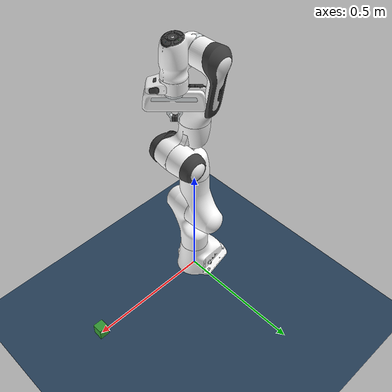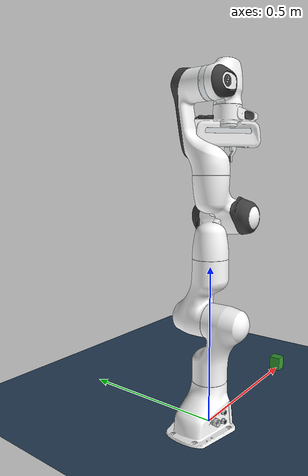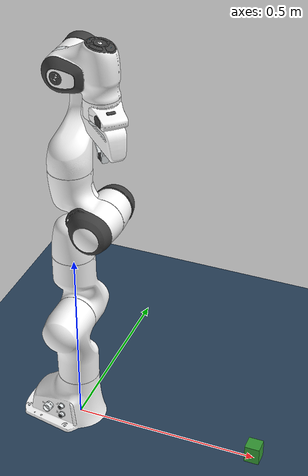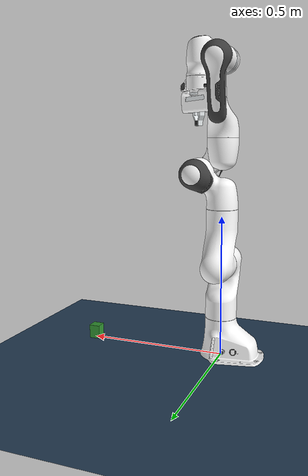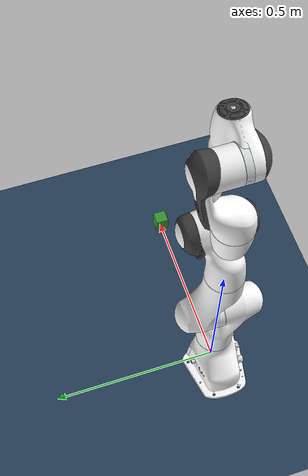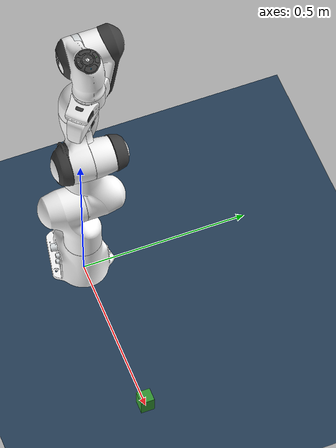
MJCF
<mujoco model="panda pregrasp scene">
  <include file="pregrasp.xml"/>

  <statistic center="0.3 0 0.4" extent="1"/>

  <visual>
    <headlight diffuse="0.6 0.6 0.6" ambient="0.3 0.3 0.3" specular="0 0 0"/>
    <rgba haze="0.15 0.25 0.35 1"/>
    <global azimuth="120" elevation="-20"/>
  </visual>

  <asset>
    <texture type="skybox" builtin="gradient" rgb1="0.3 0.5 0.7"
     rgb2="0 0 0" width="512" height="3072"/>
    <texture type="2d" name="groundplane" builtin="checker" mark="edge"
     rgb1="0.2 0.3 0.4" rgb2="0.1 0.2 0.3" markrgb="0.8 0.8 0.8"
     width="300" height="300"/>
    <material name="groundplane" texture="groundplane" texuniform="true"
     texrepeat="5 5" reflectance="0.2"/>
  </asset>

  <worldbody>
    <light pos="0 0 1.5" dir="0 0 -1" directional="true"/>
    <geom name="floor" size="0 0 0.05" type="plane" material="groundplane"/>

    <!-- The object the pregrasp pose hovers over (static, visual context) -->
    <body name="object" pos="0.5 0.0 0.025">
      <geom type="box" name="object_geom" size="0.02 0.02 0.025"
       rgba="0.2 0.6 0.2 1"/>
    </body>
  </worldbody>
</mujoco>

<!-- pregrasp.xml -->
<mujoco model="panda pregrasp">
  <compiler angle="radian" meshdir="assets/"/>

  <option timestep="0.04" integrator="implicitfast">
    <flag contact="disable"/>
  </option>

  <size nkey="1"/>

  <default>
    <default class="panda">
      <material shininess="0.25"/>
      <joint range="-2.8973 2.8973" armature="0.1" damping="1"/>
      <general ctrlrange="-2.8973 2.8973" forcerange="-100 100" biastype="affine" biasprm="0 -1"/>
      <default class="finger">
        <joint type="slide" range="0 0.04"/>
      </default>
      <default class="visual">
        <geom type="mesh" contype="0" conaffinity="0" group="2"/>
      </default>
      <default class="collision">
        <geom type="mesh" contype="0" conaffinity="0" group="3"/>
        <default class="primitive_collision">
          <geom type="box" solref="0.01" solimp="0.99 0.995 0.01"/>
          <default class="fingertip_pad_collision_1">
            <geom size="0.011 0.0075 0.01"/>
          </default>
          <default class="fingertip_pad_collision_2">
            <geom size="0.011 0.0044 0.0019"/>
          </default>
          <default class="fingertip_pad_collision_3">
            <geom size="0.00875 0.0035 0.01175"/>
          </default>
          <default class="fingertip_pad_collision_4">
            <geom size="0.00875 0.0076 0.00825" conaffinity="3"/>
          </default>
        </default>
      </default>
    </default>
  </default>

  <asset>
    <material name="white" class="panda"/>
    <material name="off_white" class="panda" rgba="0.901961 0.921569 0.929412 1"/>
    <material name="black" class="panda" rgba="0.25 0.25 0.25 1"/>
    <material name="green" class="panda" rgba="0 1 0 1"/>
    <material name="light_blue" class="panda" rgba="0.039216 0.541176 0.780392 1"/>
    <mesh name="link0_c" file="link0.stl"/>
    <mesh name="link1_c" file="link1.stl"/>
    <mesh name="link2_c" file="link2.stl"/>
    <mesh name="link3_c" file="link3.stl"/>
    <mesh name="link4_c" file="link4.stl"/>
    <mesh name="link5_c0" file="link5_collision_0.obj"/>
    <mesh name="link5_c1" file="link5_collision_1.obj"/>
    <mesh name="link5_c2" file="link5_collision_2.obj"/>
    <mesh name="link6_c" file="link6.stl"/>
    <mesh name="link7_c" file="link7.stl"/>
    <mesh name="hand_c" file="hand.stl"/>
    <mesh name="link0_0" file="link0_0.obj"/>
    <mesh name="link0_1" file="link0_1.obj"/>
    <mesh name="link0_2" file="link0_2.obj"/>
    <mesh name="link0_3" file="link0_3.obj"/>
    <mesh name="link0_4" file="link0_4.obj"/>
    <mesh name="link0_5" file="link0_5.obj"/>
    <mesh name="link0_7" file="link0_7.obj"/>
    <mesh name="link0_8" file="link0_8.obj"/>
    <mesh name="link0_9" file="link0_9.obj"/>
    <mesh name="link0_10" file="link0_10.obj"/>
    <mesh name="link0_11" file="link0_11.obj"/>
    <mesh name="link1" file="link1.obj"/>
    <mesh name="link2" file="link2.obj"/>
    <mesh name="link3_0" file="link3_0.obj"/>
    <mesh name="link3_1" file="link3_1.obj"/>
    <mesh name="link3_2" file="link3_2.obj"/>
    <mesh name="link3_3" file="link3_3.obj"/>
    <mesh name="link4_0" file="link4_0.obj"/>
    <mesh name="link4_1" file="link4_1.obj"/>
    <mesh name="link4_2" file="link4_2.obj"/>
    <mesh name="link4_3" file="link4_3.obj"/>
    <mesh name="link5_0" file="link5_0.obj"/>
    <mesh name="link5_1" file="link5_1.obj"/>
    <mesh name="link5_2" file="link5_2.obj"/>
    <mesh name="link6_0" file="link6_0.obj"/>
    <mesh name="link6_1" file="link6_1.obj"/>
    <mesh name="link6_2" file="link6_2.obj"/>
    <mesh name="link6_3" file="link6_3.obj"/>
    <mesh name="link6_4" file="link6_4.obj"/>
    <mesh name="link6_5" file="link6_5.obj"/>
    <mesh name="link6_6" file="link6_6.obj"/>
    <mesh name="link6_7" file="link6_7.obj"/>
    <mesh name="link6_8" file="link6_8.obj"/>
    <mesh name="link6_9" file="link6_9.obj"/>
    <mesh name="link6_10" file="link6_10.obj"/>
    <mesh name="link6_11" file="link6_11.obj"/>
    <mesh name="link6_12" file="link6_12.obj"/>
    <mesh name="link6_13" file="link6_13.obj"/>
    <mesh name="link6_14" file="link6_14.obj"/>
    <mesh name="link6_15" file="link6_15.obj"/>
    <mesh name="link6_16" file="link6_16.obj"/>
    <mesh name="link7_0" file="link7_0.obj"/>
    <mesh name="link7_1" file="link7_1.obj"/>
    <mesh name="link7_2" file="link7_2.obj"/>
    <mesh name="link7_3" file="link7_3.obj"/>
    <mesh name="link7_4" file="link7_4.obj"/>
    <mesh name="link7_5" file="link7_5.obj"/>
    <mesh name="link7_6" file="link7_6.obj"/>
    <mesh name="link7_7" file="link7_7.obj"/>
    <mesh name="hand_0" file="hand_0.obj"/>
    <mesh name="hand_1" file="hand_1.obj"/>
    <mesh name="hand_2" file="hand_2.obj"/>
    <mesh name="hand_3" file="hand_3.obj"/>
    <mesh name="hand_4" file="hand_4.obj"/>
    <mesh name="finger_0" file="finger_0.obj"/>
    <mesh name="finger_1" file="finger_1.obj"/>
  </asset>

  <worldbody>
    <light name="top" pos="0 0 2" dir="0 0 -1" mode="trackcom"/>
    <body name="link0" childclass="panda">
      <inertial pos="-0.041018 -0.00014 0.049974" quat="0.00630474 0.751245 0.00741774 0.659952" mass="0.629769" diaginertia="0.00430465 0.00387984 0.00313051"/>
      <geom class="visual" material="off_white" mesh="link0_0"/>
      <geom class="visual" material="black" mesh="link0_1"/>
      <geom class="visual" material="off_white" mesh="link0_2"/>
      <geom class="visual" material="black" mesh="link0_3"/>
      <geom class="visual" material="off_white" mesh="link0_4"/>
      <geom class="visual" material="black" mesh="link0_5"/>
      <geom class="visual" material="white" mesh="link0_7"/>
      <geom class="visual" material="white" mesh="link0_8"/>
      <geom class="visual" material="black" mesh="link0_9"/>
      <geom class="visual" material="off_white" mesh="link0_10"/>
      <geom class="visual" material="white" mesh="link0_11"/>
      <geom class="collision" mesh="link0_c"/>
      <body name="link1" pos="0 0 0.333">
        <inertial pos="0.003875 0.002081 -0.04762" quat="0.711549 0.00634377 -0.0131124 0.702485" mass="4.97068" diaginertia="0.707137 0.703435 0.00852456"/>
        <joint name="joint1" pos="0 0 0" axis="0 0 1"/>
        <geom class="visual" material="white" mesh="link1"/>
        <geom class="collision" mesh="link1_c"/>
        <body name="link2" quat="0.707107 -0.707107 0 0">
          <inertial pos="-0.003141 -0.02872 0.003495" quat="-0.168175 0.828366 -0.122878 0.520027" mass="0.646926" diaginertia="0.0310326 0.0283001 0.00273425"/>
          <joint name="joint2" pos="0 0 0" axis="0 0 1" range="-1.7628 1.7628"/>
          <geom class="visual" material="white" mesh="link2"/>
          <geom class="collision" mesh="link2_c"/>
          <body name="link3" pos="0 -0.316 0" quat="0.707107 0.707107 0 0">
            <inertial pos="0.027518 0.039252 -0.066502" quat="0.662769 -0.00678331 0.252053 0.705096" mass="3.2286" diaginertia="0.0415014 0.0414793 0.00124635"/>
            <joint name="joint3" pos="0 0 0" axis="0 0 1"/>
            <geom class="visual" material="white" mesh="link3_0"/>
            <geom class="visual" material="white" mesh="link3_1"/>
            <geom class="visual" material="white" mesh="link3_2"/>
            <geom class="visual" material="black" mesh="link3_3"/>
            <geom class="collision" mesh="link3_c"/>
            <body name="link4" pos="0.0825 0 0" quat="0.707107 0.707107 0 0">
              <inertial pos="-0.05317 0.104419 0.027454" quat="0.65058 0.529822 -0.0962034 0.535518" mass="3.5879" diaginertia="0.0349596 0.0281483 0.0106201"/>
              <joint name="joint4" pos="0 0 0" axis="0 0 1" range="-3.0718 -0.0698"/>
              <geom class="visual" material="white" mesh="link4_0"/>
              <geom class="visual" material="white" mesh="link4_1"/>
              <geom class="visual" material="black" mesh="link4_2"/>
              <geom class="visual" material="white" mesh="link4_3"/>
              <geom class="collision" mesh="link4_c"/>
              <body name="link5" pos="-0.0825 0.384 0" quat="0.707107 -0.707107 0 0">
                <inertial pos="-0.011953 0.041065 -0.038437" quat="0.987313 -0.0121954 0.0719187 -0.141037" mass="1.22595" diaginertia="0.0367625 0.0288531 0.00803437"/>
                <joint name="joint5" pos="0 0 0" axis="0 0 1"/>
                <geom class="visual" material="black" mesh="link5_0"/>
                <geom class="visual" material="white" mesh="link5_1"/>
                <geom class="visual" material="white" mesh="link5_2"/>
                <geom class="collision" mesh="link5_c0"/>
                <geom class="collision" mesh="link5_c1"/>
                <geom class="collision" mesh="link5_c2"/>
                <body name="link6" quat="0.707107 0.707107 0 0">
                  <inertial pos="0.060149 -0.014117 -0.010517" quat="0.101075 0.59332 0.0287227 0.798079" mass="1.66656" diaginertia="0.00584276 0.00431037 0.00159787"/>
                  <joint name="joint6" pos="0 0 0" axis="0 0 1" range="-0.0175 3.7525"/>
                  <geom class="visual" material="off_white" mesh="link6_0"/>
                  <geom class="visual" material="white" mesh="link6_1"/>
                  <geom class="visual" material="black" mesh="link6_2"/>
                  <geom class="visual" material="white" mesh="link6_3"/>
                  <geom class="visual" material="white" mesh="link6_4"/>
                  <geom class="visual" material="white" mesh="link6_5"/>
                  <geom class="visual" material="white" mesh="link6_6"/>
                  <geom class="visual" material="light_blue" mesh="link6_7"/>
                  <geom class="visual" material="light_blue" mesh="link6_8"/>
                  <geom class="visual" material="black" mesh="link6_9"/>
                  <geom class="visual" material="black" mesh="link6_10"/>
                  <geom class="visual" material="white" mesh="link6_11"/>
                  <geom class="visual" material="green" mesh="link6_12"/>
                  <geom class="visual" material="white" mesh="link6_13"/>
                  <geom class="visual" material="black" mesh="link6_14"/>
                  <geom class="visual" material="black" mesh="link6_15"/>
                  <geom class="visual" material="white" mesh="link6_16"/>
                  <geom class="collision" mesh="link6_c"/>
                  <body name="link7" pos="0.088 0 0" quat="0.707107 0.707107 0 0">
                    <inertial pos="0.010517 -0.004252 0.061597" quat="0.992939 -0.0762041 0.0733595 -0.0537067" mass="0.735522" diaginertia="0.0127345 0.0101055 0.00451803"/>
                    <joint name="joint7" pos="0 0 0" axis="0 0 1"/>
                    <geom class="visual" material="white" mesh="link7_0"/>
                    <geom class="visual" material="black" mesh="link7_1"/>
                    <geom class="visual" material="black" mesh="link7_2"/>
                    <geom class="visual" material="black" mesh="link7_3"/>
                    <geom class="visual" material="black" mesh="link7_4"/>
                    <geom class="visual" material="black" mesh="link7_5"/>
                    <geom class="visual" material="black" mesh="link7_6"/>
                    <geom class="visual" material="white" mesh="link7_7"/>
                    <geom class="collision" mesh="link7_c"/>
                    <body name="hand" pos="0 0 0.107" quat="0.92388 0 0 -0.382683">
                      <inertial pos="-0.01 0 0.03" mass="0.73" diaginertia="0.001 0.0025 0.0017"/>
                      <geom class="visual" material="off_white" mesh="hand_0"/>
                      <geom class="visual" material="black" mesh="hand_1"/>
                      <geom class="visual" material="black" mesh="hand_2"/>
                      <geom class="visual" material="white" mesh="hand_3"/>
                      <geom class="visual" material="off_white" mesh="hand_4"/>
                      <geom class="collision" mesh="hand_c"/>
                      <geom name="hand_capsule" class="collision" size="0.04 0.06" pos="0 0 0.03" quat="0.707107 0.707107 0 0" type="capsule" conaffinity="1"/>
                      <site name="gripper" pos="0 0 0.1"/>
                      <body name="left_finger" pos="0 0 0.0584">
                        <inertial pos="0 0 0" mass="0.015" diaginertia="2.375e-06 2.375e-06 7.5e-07"/>
                        <geom class="visual" material="off_white" mesh="finger_0"/>
                        <geom class="visual" material="black" mesh="finger_1"/>
                        <geom class="collision" mesh="finger_0"/>
                        <geom class="fingertip_pad_collision_1" pos="0 0.0185 0.011"/>
                        <geom class="fingertip_pad_collision_2" pos="0 0.0068 0.0022"/>
                        <geom class="fingertip_pad_collision_3" pos="0 0.0159 0.02835" quat="0.970143 0.242536 0 0"/>
                        <geom name="left_finger_pad" class="fingertip_pad_collision_4" pos="0 0.00758 0.04525"/>
                      </body>
                      <body name="right_finger" pos="0 0 0.0584" quat="0 0 0 1">
                        <inertial pos="0 0 0" mass="0.015" diaginertia="2.375e-06 2.375e-06 7.5e-07"/>
                        <geom class="visual" material="off_white" mesh="finger_0"/>
                        <geom class="visual" material="black" mesh="finger_1"/>
                        <geom class="collision" mesh="finger_0"/>
                        <geom class="fingertip_pad_collision_1" pos="0 0.0185 0.011"/>
                        <geom class="fingertip_pad_collision_2" pos="0 0.0068 0.0022"/>
                        <geom class="fingertip_pad_collision_3" pos="0 0.0159 0.02835" quat="0.970143 0.242536 0 0"/>
                        <geom name="right_finger_pad" class="fingertip_pad_collision_4" pos="0 0.00758 0.04525"/>
                      </body>
                    </body>
                  </body>
                </body>
              </body>
            </body>
          </body>
        </body>
      </body>
    </body>
  </worldbody>

  <contact>
    <exclude body1="link0" body2="link1"/>
  </contact>

  <actuator>
    <general name="motor1" joint="joint1" ctrllimited="true" ctrlrange="-87 87"/>
    <general name="motor2" joint="joint2" ctrllimited="true" ctrlrange="-87 87"/>
    <general name="motor3" joint="joint3" ctrllimited="true" ctrlrange="-87 87"/>
    <general name="motor4" joint="joint4" ctrllimited="true" ctrlrange="-87 87"/>
    <general name="motor5" joint="joint5" ctrllimited="true" ctrlrange="-12 12"/>
    <general name="motor6" joint="joint6" ctrllimited="true" ctrlrange="-12 12"/>
    <general name="motor7" joint="joint7" ctrllimited="true" ctrlrange="-12 12"/>
  </actuator>

  <keyframe>
    <key name="home" qpos="0 -0.785 0 -2.356 0 1.571 0.785"/>
  </keyframe>
</mujoco>
